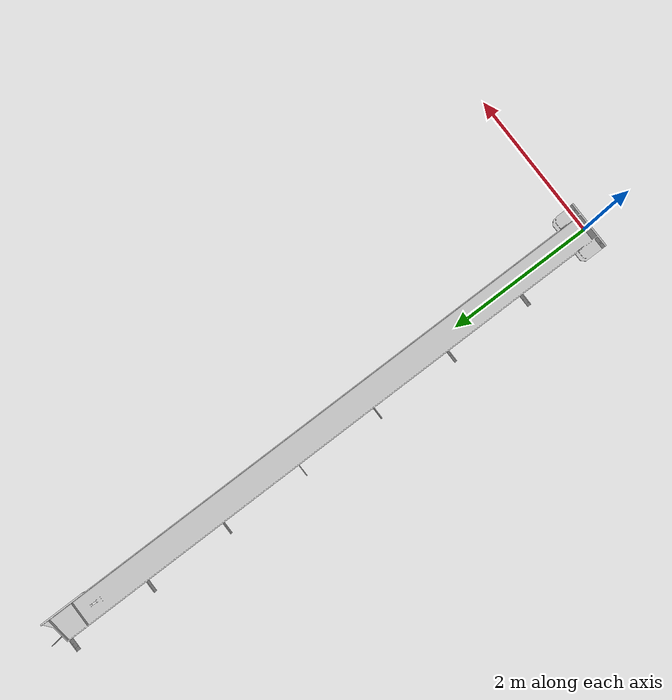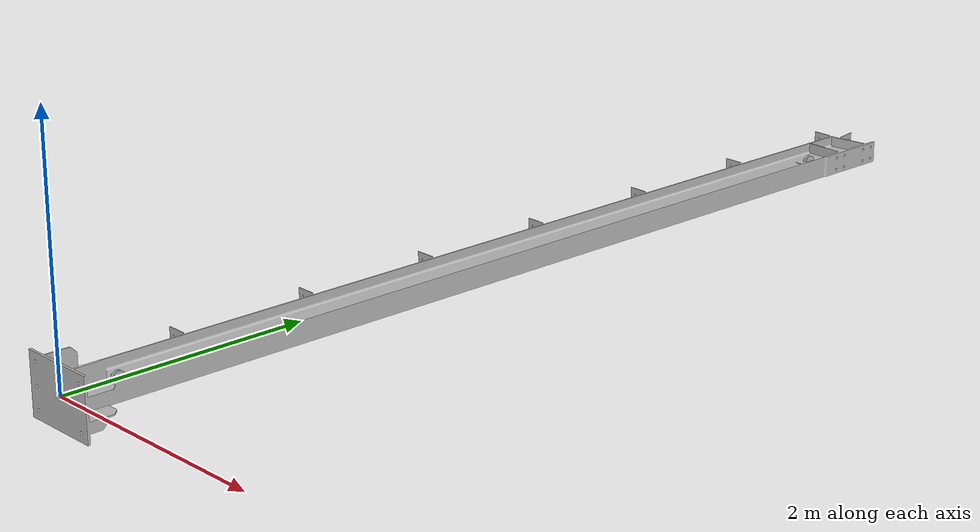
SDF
<?xml version="1.0"?>
<sdf version="1.5">
  <model name="pillar">
    <link name="link">
      <gravity>false</gravity>
      <pose>0 0 0 0 0 0</pose>
      <collision name="collision">
        <geometry>
          <mesh>
            <uri>model://pillar/pillar.STL</uri>
          </mesh>
        </geometry>
      </collision>
      <visual name="visual">
        <geometry>
          <mesh>
            <uri>model://pillar/pillar.STL</uri>
          </mesh>
        </geometry>
      </visual>
    </link>
  </model>
</sdf>
